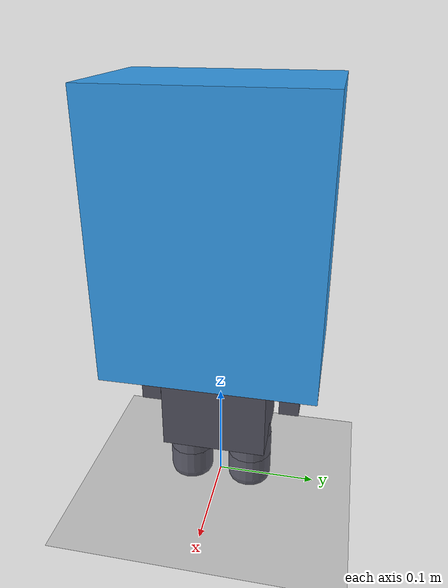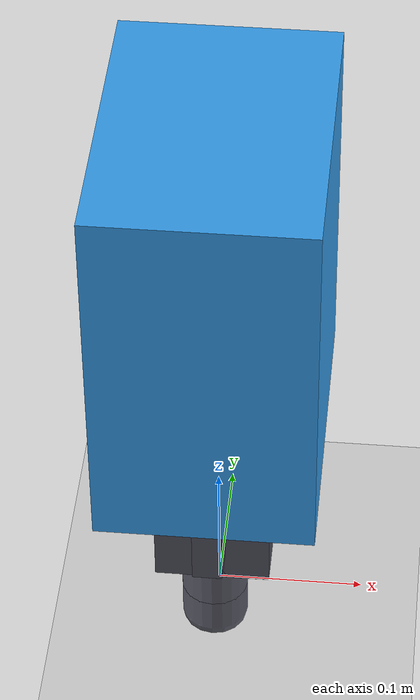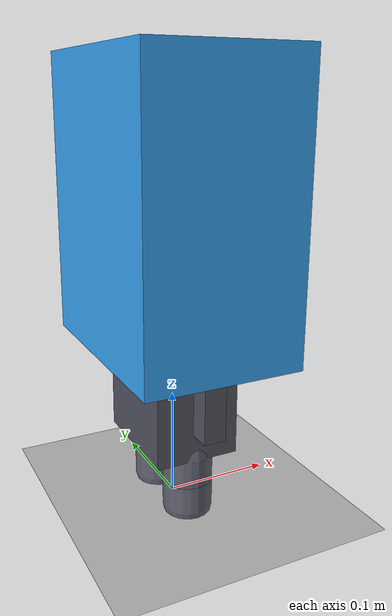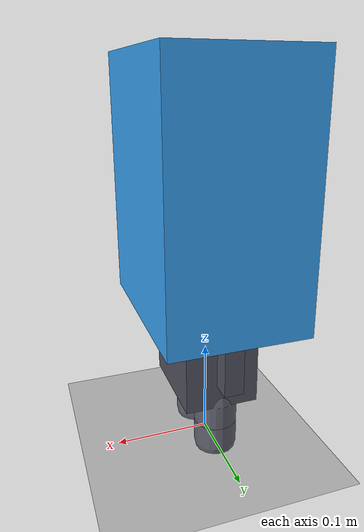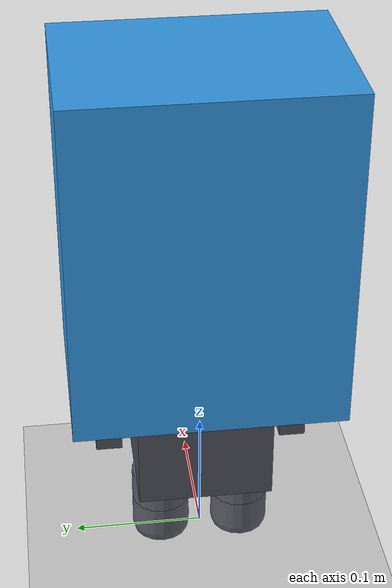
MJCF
<mujoco model="smoke_case1_short">
  <compiler angle="radian" autolimits="true"/>
  <option timestep="0.004" gravity="0 0 -9.81"/>

  <default>
    <joint type="hinge" damping="0.3" armature="0.001"/>
    <position kp="12" ctrlrange="-3.1416 3.1416"/>
    <geom contype="0" conaffinity="0" friction="0.9 0.02 0.01"/>
    <default class="foot_collision">
      <geom contype="1" conaffinity="1"/>
    </default>
  </default>

  <worldbody>
    <light pos="0 0 2" dir="0 0 -1" diffuse="1 1 1"/>
    <geom name="floor" type="plane" size="0 0 0.01" contype="1" conaffinity="0" rgba="0.8 0.8 0.8 1"/>

    <body name="body_link" pos="0 0 0.101774">
      <freejoint/>
      <site name="imu" pos="0 0 0"/>
      <geom name="torso_geom" type="box" size="0.038710 0.051613 0.045161" mass="0.53" rgba="0.3 0.3 0.35 1"/>
      <geom name="head_geom" type="box" pos="0 0 0.174194" size="0.071685 0.100358 0.129032" mass="0.45" rgba="0.2 0.6 0.9 1"/>
      <geom name="l_arm_geom" type="box" pos="0 0.071613 0.016422" size="0.01 0.01 0.03" mass="0.03" rgba="0.3 0.3 0.35 1"/>
      <geom name="r_arm_geom" type="box" pos="0 -0.071613 0.016422" size="0.01 0.01 0.03" mass="0.03" rgba="0.3 0.3 0.35 1"/>

      <body name="l_hip_yaw_link" pos="0 0.031613 -0.045161">
        <joint name="l_hip_yaw" axis="0 0 1" range="-0.5236 0.5236"/>
        <geom type="sphere" size="0.008" mass="0.02" rgba="0.5 0.5 0.5 1"/>
        <body name="l_hip_roll_link">
          <joint name="l_hip_roll" axis="1 0 0" range="-0.5236 0.5236"/>
          <geom type="sphere" size="0.008" mass="0.03" rgba="0.5 0.5 0.5 1"/>
          <body name="l_hip_pitch_link">
            <joint name="l_hip_pitch" axis="0 1 0" range="-1.5708 0.7854"/>
            <geom name="l_thigh_geom" type="capsule" fromto="0 0 0 0 0 -0.025806" size="0.022581" mass="0.08" rgba="0.35 0.35 0.4 1"/>
            <body name="l_knee_link" pos="0 0 -0.025806">
              <joint name="l_knee" axis="0 1 0" range="-0.1745 2.0944"/>
              <geom name="l_shank_geom" type="capsule" fromto="0 0 0 0 0 -0.025806" size="0.022581" mass="0.06" rgba="0.35 0.35 0.4 1"/>
              <body name="l_foot_link" pos="0 0 -0.025806">
                <geom class="foot_collision" name="l_foot_heel" type="capsule" pos="-0.007038 0 -0.000114" axisangle="1 0 0 1.5708" size="0.003000 0.006323" mass="0.013" rgba="0.15 0.15 0.15 1"/>
                <geom class="foot_collision" name="l_foot_mid"  type="capsule" pos="0 0 -0.002000" axisangle="1 0 0 1.5708" size="0.003000 0.006323" mass="0.014" rgba="0.15 0.15 0.15 1"/>
                <geom class="foot_collision" name="l_foot_toe"  type="capsule" pos="0.007038 0 -0.000114" axisangle="1 0 0 1.5708" size="0.003000 0.006323" mass="0.013" rgba="0.15 0.15 0.15 1"/>
              </body>
            </body>
          </body>
        </body>
      </body>

      <body name="r_hip_yaw_link" pos="0 -0.031613 -0.045161">
        <joint name="r_hip_yaw" axis="0 0 1" range="-0.5236 0.5236"/>
        <geom type="sphere" size="0.008" mass="0.02" rgba="0.5 0.5 0.5 1"/>
        <body name="r_hip_roll_link">
          <joint name="r_hip_roll" axis="1 0 0" range="-0.5236 0.5236"/>
          <geom type="sphere" size="0.008" mass="0.03" rgba="0.5 0.5 0.5 1"/>
          <body name="r_hip_pitch_link">
            <joint name="r_hip_pitch" axis="0 1 0" range="-1.5708 0.7854"/>
            <geom name="r_thigh_geom" type="capsule" fromto="0 0 0 0 0 -0.025806" size="0.022581" mass="0.08" rgba="0.35 0.35 0.4 1"/>
            <body name="r_knee_link" pos="0 0 -0.025806">
              <joint name="r_knee" axis="0 1 0" range="-0.1745 2.0944"/>
              <geom name="r_shank_geom" type="capsule" fromto="0 0 0 0 0 -0.025806" size="0.022581" mass="0.06" rgba="0.35 0.35 0.4 1"/>
              <body name="r_foot_link" pos="0 0 -0.025806">
                <geom class="foot_collision" name="r_foot_heel" type="capsule" pos="-0.007038 0 -0.000114" axisangle="1 0 0 1.5708" size="0.003000 0.006323" mass="0.013" rgba="0.15 0.15 0.15 1"/>
                <geom class="foot_collision" name="r_foot_mid"  type="capsule" pos="0 0 -0.002000" axisangle="1 0 0 1.5708" size="0.003000 0.006323" mass="0.014" rgba="0.15 0.15 0.15 1"/>
                <geom class="foot_collision" name="r_foot_toe"  type="capsule" pos="0.007038 0 -0.000114" axisangle="1 0 0 1.5708" size="0.003000 0.006323" mass="0.013" rgba="0.15 0.15 0.15 1"/>
              </body>
            </body>
          </body>
        </body>
      </body>
    </body>
  </worldbody>

  <actuator>
    <position name="l_hip_yaw_act" joint="l_hip_yaw"/>
    <position name="l_hip_roll_act" joint="l_hip_roll"/>
    <position name="l_hip_pitch_act" joint="l_hip_pitch"/>
    <position name="l_knee_act" joint="l_knee"/>
    <position name="r_hip_yaw_act" joint="r_hip_yaw"/>
    <position name="r_hip_roll_act" joint="r_hip_roll"/>
    <position name="r_hip_pitch_act" joint="r_hip_pitch"/>
    <position name="r_knee_act" joint="r_knee"/>
  </actuator>

  <sensor>
    <gyro site="imu" name="gyro"/>
    <velocimeter site="imu" name="local_linvel"/>
    <accelerometer site="imu" name="accelerometer"/>
    <framezaxis objtype="site" objname="imu" name="upvector"/>
    <framelinvel objtype="site" objname="imu" name="global_linvel"/>
    <frameangvel objtype="site" objname="imu" name="global_angvel"/>
    <framepos objtype="site" objname="imu" name="position"/>
  </sensor>

  <keyframe>
    <key name="stand" qpos="0 0 0.101774 1 0 0 0  0 0 0 0  0 0 0 0"/>
  </keyframe>
</mujoco>
